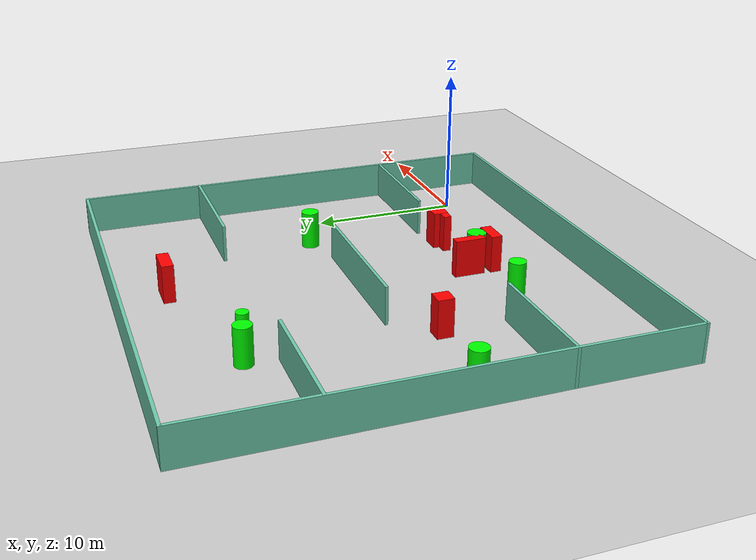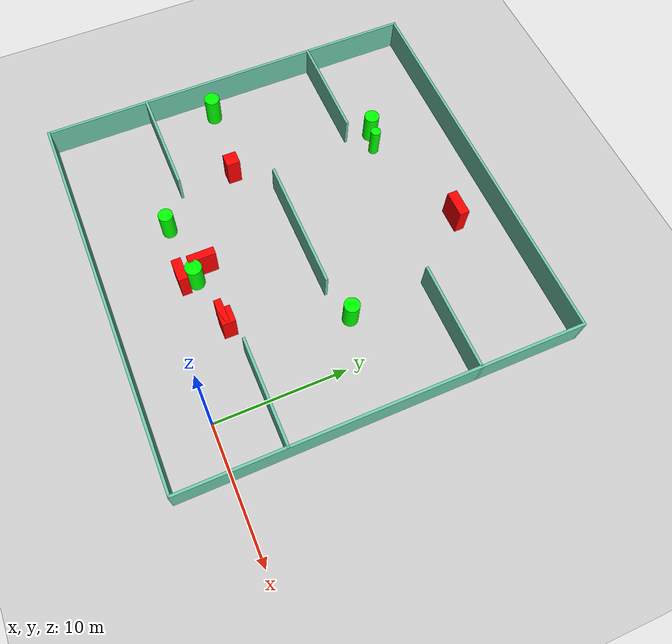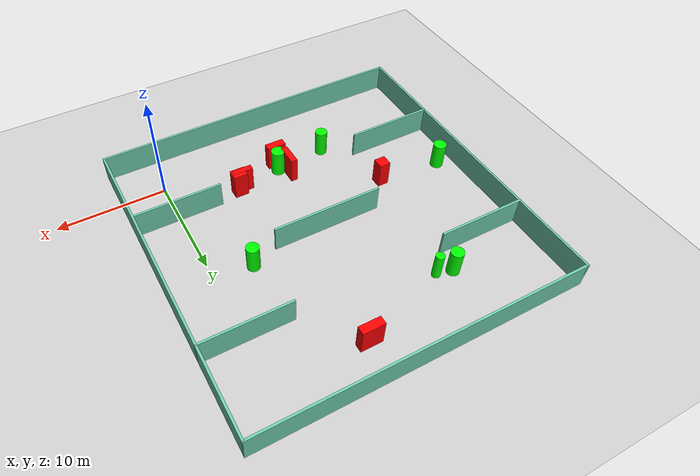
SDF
<sdf version="1.7">
 <world name="default">
  <light name="sun" type="directional">
   <pose>0 0 10 0 -0 0</pose>
   <diffuse>0.8 0.8 0.8 1</diffuse>
   <specular>0.2 0.2 0.2 1</specular>
   <attenuation>
    <range>1000</range>
    <constant>0.9</constant>
    <linear>0.01</linear>
    <quadratic>0.001</quadratic>
   </attenuation>
   <direction>-0.5 0.1 -0.9</direction>
   <spot><inner_angle>0</inner_angle><outer_angle>0</outer_angle><falloff>0</falloff></spot>
  </light>
  <model name="ground_plane">
   <static>1</static>
   <link name="link">
    <collision name="collision">
     <geometry><plane><normal>0 0 1</normal><size>100 100</size></plane></geometry>
     <surface>
      <contact><collide_bitmask>65535</collide_bitmask></contact>
      <friction><ode><mu>100</mu><mu2>50</mu2></ode></friction>
     </surface>
    </collision>
    <visual name="visual">
     <cast_shadows>0</cast_shadows>
     <geometry><plane><normal>0 0 1</normal><size>100 100</size></plane></geometry>
     <material>
      <script><uri>file://media/materials/scripts/gazebo.material</uri><name>Gazebo/Grey</name></script>
     </material>
    </visual>
   </link>
  </model>
  <gravity>0 0 -9.8</gravity>
  <magnetic_field>6e-06 2.3e-05 -4.2e-05</magnetic_field>
  <atmosphere type="adiabatic"/>
  <physics type="ode">
   <max_step_size>0.001</max_step_size>
   <real_time_factor>1</real_time_factor>
   <real_time_update_rate>1000</real_time_update_rate>
  </physics>
  <scene><ambient>0.4 0.4 0.4 1</ambient><background>0.7 0.7 0.7 1</background><shadows>1</shadows></scene>
  <spherical_coordinates>
   <surface_model>EARTH_WGS84</surface_model>
   <latitude_deg>0</latitude_deg>
   <longitude_deg>0</longitude_deg>
   <elevation>0</elevation>
   <heading_deg>0</heading_deg>
  </spherical_coordinates>
  <model name="my_base_walls">
   <link name="Wall_10">
    <collision name="Wall_10_Collision">
     <geometry><box><size>8.2 0.2 2.5</size></box></geometry>
     <pose>0 0 1.25 0 -0 0</pose>
    </collision>
    <visual name="Wall_10_Visual">
     <pose>0 0 1.25 0 -0 0</pose>
     <geometry><box><size>8.2 0.2 2.5</size></box></geometry>
     <material>
      <script><uri>file://media/materials/scripts/gazebo.material</uri><name>Gazebo/Grey</name></script>
      <ambient>0.435294 0.796078 0.67451 1</ambient>
     </material>
     <meta><layer>0</layer></meta>
    </visual>
    <pose>-11 -7 0 0 -0 0</pose>
   </link>
   <link name="Wall_12">
    <collision name="Wall_12_Collision">
     <geometry><box><size>8.2 0.2 2.5</size></box></geometry>
     <pose>0 0 1.25 0 -0 0</pose>
    </collision>
    <visual name="Wall_12_Visual">
     <pose>0 0 1.25 0 -0 0</pose>
     <geometry><box><size>8.2 0.2 2.5</size></box></geometry>
     <material>
      <script><uri>file://media/materials/scripts/gazebo.material</uri><name>Gazebo/Grey</name></script>
      <ambient>0.435294 0.796078 0.67451 1</ambient>
     </material>
     <meta><layer>0</layer></meta>
    </visual>
    <pose>-11 7 0 0 -0 0</pose>
   </link>
   <link name="Wall_14">
    <collision name="Wall_14_Collision">
     <geometry><box><size>8.2 0.2 2.5</size></box></geometry>
     <pose>0 0 1.25 0 -0 0</pose>
    </collision>
    <visual name="Wall_14_Visual">
     <pose>0 0 1.25 0 -0 0</pose>
     <geometry><box><size>8.2 0.2 2.5</size></box></geometry>
     <material>
      <script><uri>file://media/materials/scripts/gazebo.material</uri><name>Gazebo/Grey</name></script>
      <ambient>0.435294 0.796078 0.67451 1</ambient>
     </material>
     <meta><layer>0</layer></meta>
    </visual>
    <pose>11 7 0 0 -0 3.14159</pose>
   </link>
   <link name="Wall_16">
    <collision name="Wall_16_Collision">
     <geometry><box><size>10.2 0.2 2.5</size></box></geometry>
     <pose>0 0 1.25 0 -0 0</pose>
    </collision>
    <visual name="Wall_16_Visual">
     <pose>0 0 1.25 0 -0 0</pose>
     <geometry><box><size>10.2 0.2 2.5</size></box></geometry>
     <material>
      <script><uri>file://media/materials/scripts/gazebo.material</uri><name>Gazebo/Grey</name></script>
      <ambient>0.435294 0.796078 0.67451 1</ambient>
     </material>
     <meta><layer>0</layer></meta>
    </visual>
    <pose>0 0 0 0 -0 3.14159</pose>
   </link>
   <link name="Wall_2">
    <collision name="Wall_2_Collision">
     <geometry><box><size>30.2 0.2 2.5</size></box></geometry>
     <pose>0 0 1.25 0 -0 0</pose>
    </collision>
    <visual name="Wall_2_Visual">
     <pose>0 0 1.25 0 -0 0</pose>
     <geometry><box><size>30.2 0.2 2.5</size></box></geometry>
     <material>
      <script><uri>file://media/materials/scripts/gazebo.material</uri><name>Gazebo/Grey</name></script>
      <ambient>0.435294 0.796078 0.67451 1</ambient>
     </material>
     <meta><layer>0</layer></meta>
    </visual>
    <pose>0 -15 0 0 -0 3.14159</pose>
   </link>
   <link name="Wall_3">
    <collision name="Wall_3_Collision">
     <geometry><box><size>30.2 0.2 2.5</size></box></geometry>
     <pose>0 0 1.25 0 -0 0</pose>
    </collision>
    <visual name="Wall_3_Visual">
     <pose>0 0 1.25 0 -0 0</pose>
     <geometry><box><size>30.2 0.2 2.5</size></box></geometry>
     <material>
      <script><uri>file://media/materials/scripts/gazebo.material</uri><name>Gazebo/Grey</name></script>
      <ambient>0.435294 0.796078 0.67451 1</ambient>
     </material>
     <meta><layer>0</layer></meta>
    </visual>
    <pose>-15 0 0 0 -0 1.5708</pose>
   </link>
   <link name="Wall_4">
    <collision name="Wall_4_Collision">
     <geometry><box><size>30.2 0.2 2.5</size></box></geometry>
     <pose>0 0 1.25 0 -0 0</pose>
    </collision>
    <visual name="Wall_4_Visual">
     <pose>0 0 1.25 0 -0 0</pose>
     <geometry><box><size>30.2 0.2 2.5</size></box></geometry>
     <material>
      <script><uri>file://media/materials/scripts/gazebo.material</uri><name>Gazebo/Grey</name></script>
      <ambient>0.435294 0.796078 0.67451 1</ambient>
     </material>
     <meta><layer>0</layer></meta>
    </visual>
    <pose>0 15 0 0 -0 0</pose>
   </link>
   <link name="Wall_6">
    <collision name="Wall_6_Collision">
     <geometry><box><size>30.2 0.2 2.5</size></box></geometry>
     <pose>0 0 1.25 0 -0 0</pose>
    </collision>
    <visual name="Wall_6_Visual">
     <pose>0 0 1.25 0 -0 0</pose>
     <geometry><box><size>30.2 0.2 2.5</size></box></geometry>
     <material>
      <script><uri>file://media/materials/scripts/gazebo.material</uri><name>Gazebo/Grey</name></script>
      <ambient>0.435294 0.796078 0.67451 1</ambient>
     </material>
     <meta><layer>0</layer></meta>
    </visual>
    <pose>15 0 0 0 -0 1.5708</pose>
   </link>
   <link name="Wall_8">
    <collision name="Wall_8_Collision">
     <geometry><box><size>8.2 0.2 2.5</size></box></geometry>
     <pose>0 0 1.25 0 -0 0</pose>
    </collision>
    <visual name="Wall_8_Visual">
     <pose>0 0 1.25 0 -0 0</pose>
     <geometry><box><size>8.2 0.2 2.5</size></box></geometry>
     <material>
      <script><uri>file://media/materials/scripts/gazebo.material</uri><name>Gazebo/Grey</name></script>
      <ambient>0.435294 0.796078 0.67451 1</ambient>
     </material>
     <meta><layer>0</layer></meta>
    </visual>
    <pose>11 -7 0 0 -0 3.14159</pose>
   </link>
   <static>1</static>
   <pose>-11 11 0 0 -0 0</pose>
  </model>
  <model name="cylinder1">
   <static>1</static>
   <link name="link">
    <inertial>
     <mass>1</mass>
     <inertia><ixx>0.5</ixx><ixy>0</ixy><ixz>0</ixz><iyy>0.5</iyy><iyz>0</iyz><izz>1</izz></inertia>
    </inertial>
    <collision name="collision">
     <geometry><cylinder><radius>0.6329208057686653</radius><length>2.5</length></cylinder></geometry>
    </collision>
    <visual name="visual">
     <geometry><cylinder><radius>0.6329208057686653</radius><length>2.5</length></cylinder></geometry>
     <material>
      <ambient>0 1 0 1</ambient>
      <diffuse>0 1 0 1</diffuse>
      <specular>0.1 0.1 0.1 1</specular>
      <emissive>0 0 0 0</emissive>
     </material>
    </visual>
   </link>
   <pose>-10.496205361194475 2.583647821662505 1.25 0 0 0</pose>
  </model>
  <model name="cylinder2">
   <static>1</static>
   <link name="link">
    <inertial>
     <mass>1</mass>
     <inertia><ixx>0.5</ixx><ixy>0</ixy><ixz>0</ixz><iyy>0.5</iyy><iyz>0</iyz><izz>1</izz></inertia>
    </inertial>
    <collision name="collision">
     <geometry><cylinder><radius>0.5869890870498231</radius><length>2.5</length></cylinder></geometry>
    </collision>
    <visual name="visual">
     <geometry><cylinder><radius>0.5869890870498231</radius><length>2.5</length></cylinder></geometry>
     <material>
      <ambient>0 1 0 1</ambient>
      <diffuse>0 1 0 1</diffuse>
      <specular>0.1 0.1 0.1 1</specular>
      <emissive>0 0 0 0</emissive>
     </material>
    </visual>
   </link>
   <pose>-3.454429992843309 11.842501854396188 1.25 0 0 0</pose>
  </model>
  <model name="cylinder3">
   <static>1</static>
   <link name="link">
    <inertial>
     <mass>1</mass>
     <inertia><ixx>0.5</ixx><ixy>0</ixy><ixz>0</ixz><iyy>0.5</iyy><iyz>0</iyz><izz>1</izz></inertia>
    </inertial>
    <collision name="collision">
     <geometry><cylinder><radius>0.5592183075608392</radius><length>2.5</length></cylinder></geometry>
    </collision>
    <visual name="visual">
     <geometry><cylinder><radius>0.5592183075608392</radius><length>2.5</length></cylinder></geometry>
     <material>
      <ambient>0 1 0 1</ambient>
      <diffuse>0 1 0 1</diffuse>
      <specular>0.1 0.1 0.1 1</specular>
      <emissive>0 0 0 0</emissive>
     </material>
    </visual>
   </link>
   <pose>-15.390383064919606 2.108639909767982 1.25 0 0 0</pose>
  </model>
  <model name="cylinder4">
   <static>1</static>
   <link name="link">
    <inertial>
     <mass>1</mass>
     <inertia><ixx>0.5</ixx><ixy>0</ixy><ixz>0</ixz><iyy>0.5</iyy><iyz>0</iyz><izz>1</izz></inertia>
    </inertial>
    <collision name="collision">
     <geometry><cylinder><radius>0.3926784211322378</radius><length>2.5</length></cylinder></geometry>
    </collision>
    <visual name="visual">
     <geometry><cylinder><radius>0.3926784211322378</radius><length>2.5</length></cylinder></geometry>
     <material>
      <ambient>0 1 0 1</ambient>
      <diffuse>0 1 0 1</diffuse>
      <specular>0.1 0.1 0.1 1</specular>
      <emissive>0 0 0 0</emissive>
     </material>
    </visual>
   </link>
   <pose>-16.312426981460387 19.736788753962895 1.25 0 0 0</pose>
  </model>
  <model name="cylinder5">
   <static>1</static>
   <link name="link">
    <inertial>
     <mass>1</mass>
     <inertia><ixx>0.5</ixx><ixy>0</ixy><ixz>0</ixz><iyy>0.5</iyy><iyz>0</iyz><izz>1</izz></inertia>
    </inertial>
    <collision name="collision">
     <geometry><cylinder><radius>0.5992990557004565</radius><length>2.5</length></cylinder></geometry>
    </collision>
    <visual name="visual">
     <geometry><cylinder><radius>0.5992990557004565</radius><length>2.5</length></cylinder></geometry>
     <material>
      <ambient>0 1 0 1</ambient>
      <diffuse>0 1 0 1</diffuse>
      <specular>0.1 0.1 0.1 1</specular>
      <emissive>0 0 0 0</emissive>
     </material>
    </visual>
   </link>
   <pose>-24.30014760764915 8.937230605536 1.25 0 0 0</pose>
  </model>
  <model name="cylinder6">
   <static>1</static>
   <link name="link">
    <inertial>
     <mass>1</mass>
     <inertia><ixx>0.5</ixx><ixy>0</ixy><ixz>0</ixz><iyy>0.5</iyy><iyz>0</iyz><izz>1</izz></inertia>
    </inertial>
    <collision name="collision">
     <geometry><cylinder><radius>0.580484211495219</radius><length>2.5</length></cylinder></geometry>
    </collision>
    <visual name="visual">
     <geometry><cylinder><radius>0.580484211495219</radius><length>2.5</length></cylinder></geometry>
     <material>
      <ambient>0 1 0 1</ambient>
      <diffuse>0 1 0 1</diffuse>
      <specular>0.1 0.1 0.1 1</specular>
      <emissive>0 0 0 0</emissive>
     </material>
    </visual>
   </link>
   <pose>-17.776000566374666 20.078876345331174 1.25 0 0 0</pose>
  </model>
  <model name="box1">
   <static>1</static>
   <link name="link">
    <inertial>
     <mass>1</mass>
     <inertia><ixx>0.083</ixx><ixy>0</ixy><ixz>0</ixz><iyy>0.083</iyy><iyz>0</iyz><izz>0.083</izz></inertia>
    </inertial>
    <collision name="collision">
     <geometry><box><size>2.0106090470998454 0.7653950312936175 2.5</size></box></geometry>
    </collision>
    <visual name="visual">
     <geometry><box><size>2.0106090470998454 0.7653950312936175 2.5</size></box></geometry>
     <material>
      <ambient>1 0 0 1</ambient>
      <diffuse>1 0 0 1</diffuse>
      <specular>0.1 0.1 0.1 1</specular>
      <emissive>0 0 0 0</emissive>
     </material>
    </visual>
    <sensor name="my_contact" type="contact">
     <contact><collision>box_collision</collision><topic>__default_topic__</topic></contact>
    </sensor>
   </link>
   <pose>-8.000900026869516 22.61508849721233 1.25 0 0 0</pose>
  </model>
  <model name="box2">
   <static>1</static>
   <link name="link">
    <inertial>
     <mass>1</mass>
     <inertia><ixx>0.083</ixx><ixy>0</ixy><ixz>0</ixz><iyy>0.083</iyy><iyz>0</iyz><izz>0.083</izz></inertia>
    </inertial>
    <collision name="collision">
     <geometry><box><size>1.7775791230574898 0.7354156941098831 2.5</size></box></geometry>
    </collision>
    <visual name="visual">
     <geometry><box><size>1.7775791230574898 0.7354156941098831 2.5</size></box></geometry>
     <material>
      <ambient>1 0 0 1</ambient>
      <diffuse>1 0 0 1</diffuse>
      <specular>0.1 0.1 0.1 1</specular>
      <emissive>0 0 0 0</emissive>
     </material>
    </visual>
    <sensor name="my_contact" type="contact">
     <contact><collision>box_collision</collision><topic>__default_topic__</topic></contact>
    </sensor>
   </link>
   <pose>-10.717280831613813 1.6367264393297916 1.25 0 0 0</pose>
  </model>
  <model name="box3">
   <static>1</static>
   <link name="link">
    <inertial>
     <mass>1</mass>
     <inertia><ixx>0.083</ixx><ixy>0</ixy><ixz>0</ixz><iyy>0.083</iyy><iyz>0</iyz><izz>0.083</izz></inertia>
    </inertial>
    <collision name="collision">
     <geometry><box><size>0.6072584077569502 2.0637219770426967 2.5</size></box></geometry>
    </collision>
    <visual name="visual">
     <geometry><box><size>0.6072584077569502 2.0637219770426967 2.5</size></box></geometry>
     <material>
      <ambient>1 0 0 1</ambient>
      <diffuse>1 0 0 1</diffuse>
      <specular>0.1 0.1 0.1 1</specular>
      <emissive>0 0 0 0</emissive>
     </material>
    </visual>
    <sensor name="my_contact" type="contact">
     <contact><collision>box_collision</collision><topic>__default_topic__</topic></contact>
    </sensor>
   </link>
   <pose>-11.232313525543407 3.4405629287838355 1.25 0 0 0</pose>
  </model>
  <model name="box4">
   <static>1</static>
   <link name="link">
    <inertial>
     <mass>1</mass>
     <inertia><ixx>0.083</ixx><ixy>0</ixy><ixz>0</ixz><iyy>0.083</iyy><iyz>0</iyz><izz>0.083</izz></inertia>
    </inertial>
    <collision name="collision">
     <geometry><box><size>1.036555676439802 1.0509987230991336 2.5</size></box></geometry>
    </collision>
    <visual name="visual">
     <geometry><box><size>1.036555676439802 1.0509987230991336 2.5</size></box></geometry>
     <material>
      <ambient>1 0 0 1</ambient>
      <diffuse>1 0 0 1</diffuse>
      <specular>0.1 0.1 0.1 1</specular>
      <emissive>0 0 0 0</emissive>
     </material>
    </visual>
    <sensor name="my_contact" type="contact">
     <contact><collision>box_collision</collision><topic>__default_topic__</topic></contact>
    </sensor>
   </link>
   <pose>-18.24532825433002 8.354668877395282 1.25 0 0 0</pose>
  </model>
  <model name="box5">
   <static>1</static>
   <link name="link">
    <inertial>
     <mass>1</mass>
     <inertia><ixx>0.083</ixx><ixy>0</ixy><ixz>0</ixz><iyy>0.083</iyy><iyz>0</iyz><izz>0.083</izz></inertia>
    </inertial>
    <collision name="collision">
     <geometry><box><size>1.295778544041727 1.0121922092248314 2.5</size></box></geometry>
    </collision>
    <visual name="visual">
     <geometry><box><size>1.295778544041727 1.0121922092248314 2.5</size></box></geometry>
     <material>
      <ambient>1 0 0 1</ambient>
      <diffuse>1 0 0 1</diffuse>
      <specular>0.1 0.1 0.1 1</specular>
      <emissive>0 0 0 0</emissive>
     </material>
    </visual>
    <sensor name="my_contact" type="contact">
     <contact><collision>box_collision</collision><topic>__default_topic__</topic></contact>
    </sensor>
   </link>
   <pose>-6.112028386912341 3.470509443316171 1.25 0 0 0</pose>
  </model>
  <model name="box6">
   <static>1</static>
   <link name="link">
    <inertial>
     <mass>1</mass>
     <inertia><ixx>0.083</ixx><ixy>0</ixy><ixz>0</ixz><iyy>0.083</iyy><iyz>0</iyz><izz>0.083</izz></inertia>
    </inertial>
    <collision name="collision">
     <geometry><box><size>1.8297586210910246 0.5357529553761099 2.5</size></box></geometry>
    </collision>
    <visual name="visual">
     <geometry><box><size>1.8297586210910246 0.5357529553761099 2.5</size></box></geometry>
     <material>
      <ambient>1 0 0 1</ambient>
      <diffuse>1 0 0 1</diffuse>
      <specular>0.1 0.1 0.1 1</specular>
      <emissive>0 0 0 0</emissive>
     </material>
    </visual>
    <sensor name="my_contact" type="contact">
     <contact><collision>box_collision</collision><topic>__default_topic__</topic></contact>
    </sensor>
   </link>
   <pose>-6.547564269755984 3.2939322239259248 1.25 0 0 0</pose>
  </model>
 </world>
</sdf>
